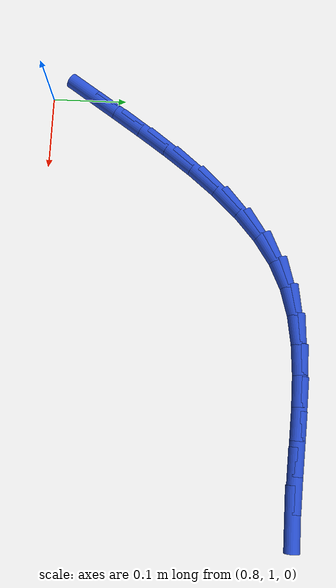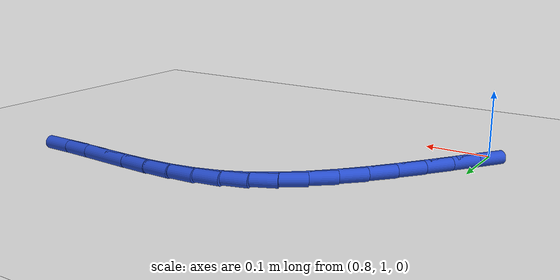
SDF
<sdf version="1.6">
 <world name="default">
  <model name="ground_plane">
   <static>1</static>
   <link name="link">
    <collision name="collision">
     <geometry><plane><normal>0 0 1</normal><size>100 100</size></plane></geometry>
     <surface><friction><ode><mu>100</mu><mu2>50</mu2></ode></friction></surface>
    </collision>
    <visual name="visual">
     <cast_shadows>0</cast_shadows>
     <geometry><plane><normal>0 0 1</normal><size>100 100</size></plane></geometry>
     <material>
      <script><uri>file://media/materials/scripts/gazebo.material</uri><name>Gazebo/WhiteGlow</name></script>
     </material>
    </visual>
   </link>
  </model>
  <model name="line">
   <link name="link_33">
    <pose>0.7979539431534008 1.0568195641522236 0.01 0 1.57 0.9688779254207448</pose>
    <collision name="collision">
     <geometry><cylinder><radius>0.01</radius><length>0.08</length></cylinder></geometry>
    </collision>
    <visual name="visual">
     <material>
      <script><name>Gazebo/Blue</name><uri>file://media/materials/scripts/gazebo.material</uri></script>
     </material>
     <geometry><cylinder><radius>0.01</radius><length>0.08</length></cylinder></geometry>
    </visual>
   </link>
   <link name="link_34">
    <pose>0.8227281380039596 1.092883250439157 0.01 0 1.57 0.9621442076169071</pose>
    <collision name="collision">
     <geometry><cylinder><radius>0.01</radius><length>0.08</length></cylinder></geometry>
    </collision>
    <visual name="visual">
     <material>
      <script><name>Gazebo/Blue</name><uri>file://media/materials/scripts/gazebo.material</uri></script>
     </material>
     <geometry><cylinder><radius>0.01</radius><length>0.08</length></cylinder></geometry>
    </visual>
   </link>
   <link name="link_35">
    <pose>0.8480619826033418 1.1292346918011351 0.01 0 1.57 0.9467366835521361</pose>
    <collision name="collision">
     <geometry><cylinder><radius>0.01</radius><length>0.08</length></cylinder></geometry>
    </collision>
    <visual name="visual">
     <material>
      <script><name>Gazebo/Blue</name><uri>file://media/materials/scripts/gazebo.material</uri></script>
     </material>
     <geometry><cylinder><radius>0.01</radius><length>0.08</length></cylinder></geometry>
    </visual>
   </link>
   <link name="link_36">
    <pose>0.874131385462575 1.165439401969273 0.01 0 1.57 0.9157407051295933</pose>
    <collision name="collision">
     <geometry><cylinder><radius>0.01</radius><length>0.08</length></cylinder></geometry>
    </collision>
    <visual name="visual">
     <material>
      <script><name>Gazebo/Blue</name><uri>file://media/materials/scripts/gazebo.material</uri></script>
     </material>
     <geometry><cylinder><radius>0.01</radius><length>0.08</length></cylinder></geometry>
    </visual>
   </link>
   <link name="link_37">
    <pose>0.9011251554934223 1.2005778145203592 0.01 0 1.57 0.8670609290528966</pose>
    <collision name="collision">
     <geometry><cylinder><radius>0.01</radius><length>0.08</length></cylinder></geometry>
    </collision>
    <visual name="visual">
     <material>
      <script><name>Gazebo/Blue</name><uri>file://media/materials/scripts/gazebo.material</uri></script>
     </material>
     <geometry><cylinder><radius>0.01</radius><length>0.08</length></cylinder></geometry>
    </visual>
   </link>
   <link name="link_38">
    <pose>0.9292329956187065 1.2336967464767978 0.01 0 1.57 0.7977326851353342</pose>
    <collision name="collision">
     <geometry><cylinder><radius>0.01</radius><length>0.08</length></cylinder></geometry>
    </collision>
    <visual name="visual">
     <material>
      <script><name>Gazebo/Blue</name><uri>file://media/materials/scripts/gazebo.material</uri></script>
     </material>
     <geometry><cylinder><radius>0.01</radius><length>0.08</length></cylinder></geometry>
    </visual>
   </link>
   <link name="link_39">
    <pose>0.9586446087612505 1.2638430148609943 0.01 0 1.57 0.7035746880100318</pose>
    <collision name="collision">
     <geometry><cylinder><radius>0.01</radius><length>0.08</length></cylinder></geometry>
    </collision>
    <visual name="visual">
     <material>
      <script><name>Gazebo/Blue</name><uri>file://media/materials/scripts/gazebo.material</uri></script>
     </material>
     <geometry><cylinder><radius>0.01</radius><length>0.08</length></cylinder></geometry>
    </visual>
   </link>
   <link name="link_40">
    <pose>0.9895496978438766 1.290063436695354 0.01 0 1.57 0.5797978837305164</pose>
    <collision name="collision">
     <geometry><cylinder><radius>0.01</radius><length>0.08</length></cylinder></geometry>
    </collision>
    <visual name="visual">
     <material>
      <script><name>Gazebo/Blue</name><uri>file://media/materials/scripts/gazebo.material</uri></script>
     </material>
     <geometry><cylinder><radius>0.01</radius><length>0.08</length></cylinder></geometry>
    </visual>
   </link>
   <link name="link_41">
    <pose>1.0221379657894079 1.3114048290022817 0.01 0 1.57 0.4249567502436075</pose>
    <collision name="collision">
     <geometry><cylinder><radius>0.01</radius><length>0.08</length></cylinder></geometry>
    </collision>
    <visual name="visual">
     <material>
      <script><name>Gazebo/Blue</name><uri>file://media/materials/scripts/gazebo.material</uri></script>
     </material>
     <geometry><cylinder><radius>0.01</radius><length>0.08</length></cylinder></geometry>
    </visual>
   </link>
   <link name="link_42">
    <pose>1.056587581494379 1.3269943495894398 0.01 0 1.57 0.269783693750644</pose>
    <collision name="collision">
     <geometry><cylinder><radius>0.01</radius><length>0.08</length></cylinder></geometry>
    </collision>
    <visual name="visual">
     <material>
      <script><name>Gazebo/Blue</name><uri>file://media/materials/scripts/gazebo.material</uri></script>
     </material>
     <geometry><cylinder><radius>0.01</radius><length>0.08</length></cylinder></geometry>
    </visual>
   </link>
   <link name="link_43">
    <pose>1.0929213217393825 1.3370415471232042 0.01 0 1.57 0.14301045735514736</pose>
    <collision name="collision">
     <geometry><cylinder><radius>0.01</radius><length>0.08</length></cylinder></geometry>
    </collision>
    <visual name="visual">
     <material>
      <script><name>Gazebo/Blue</name><uri>file://media/materials/scripts/gazebo.material</uri></script>
     </material>
     <geometry><cylinder><radius>0.01</radius><length>0.08</length></cylinder></geometry>
    </visual>
   </link>
   <link name="link_44">
    <pose>1.131050566667512 1.342531908620407 0.01 0 1.57 0.048561996883894225</pose>
    <collision name="collision">
     <geometry><cylinder><radius>0.01</radius><length>0.08</length></cylinder></geometry>
    </collision>
    <visual name="visual">
     <material>
      <script><name>Gazebo/Blue</name><uri>file://media/materials/scripts/gazebo.material</uri></script>
     </material>
     <geometry><cylinder><radius>0.01</radius><length>0.08</length></cylinder></geometry>
    </visual>
   </link>
   <link name="link_45">
    <pose>1.170884268232478 1.3444678347615822 0.01 0 1.57 -0.014863838716233342</pose>
    <collision name="collision">
     <geometry><cylinder><radius>0.01</radius><length>0.08</length></cylinder></geometry>
    </collision>
    <visual name="visual">
     <material>
      <script><name>Gazebo/Blue</name><uri>file://media/materials/scripts/gazebo.material</uri></script>
     </material>
     <geometry><cylinder><radius>0.01</radius><length>0.08</length></cylinder></geometry>
    </visual>
   </link>
   <link name="link_46">
    <pose>1.2123313783879925 1.343851726227262 0.01 0 1.57 -0.050359275299689324</pose>
    <collision name="collision">
     <geometry><cylinder><radius>0.01</radius><length>0.08</length></cylinder></geometry>
    </collision>
    <visual name="visual">
     <material>
      <script><name>Gazebo/Blue</name><uri>file://media/materials/scripts/gazebo.material</uri></script>
     </material>
     <geometry><cylinder><radius>0.01</radius><length>0.08</length></cylinder></geometry>
    </visual>
   </link>
   <link name="link_47">
    <pose>1.2553008490877655 1.3416859836979806 0.01 0 1.57 -0.06102611117015203</pose>
    <collision name="collision">
     <geometry><cylinder><radius>0.01</radius><length>0.08</length></cylinder></geometry>
    </collision>
    <visual name="visual">
     <material>
      <script><name>Gazebo/Blue</name><uri>file://media/materials/scripts/gazebo.material</uri></script>
     </material>
     <geometry><cylinder><radius>0.01</radius><length>0.08</length></cylinder></geometry>
    </visual>
   </link>
   <link name="link_48">
    <pose>1.2997016322855093 1.3389730078542705 0.01 0 1.57 -0.049320633686030776</pose>
    <collision name="collision">
     <geometry><cylinder><radius>0.01</radius><length>0.08</length></cylinder></geometry>
    </collision>
    <visual name="visual">
     <material>
      <script><name>Gazebo/Blue</name><uri>file://media/materials/scripts/gazebo.material</uri></script>
     </material>
     <geometry><cylinder><radius>0.01</radius><length>0.08</length></cylinder></geometry>
    </visual>
   </link>
   <link name="link_49">
    <pose>1.3454426799349344 1.3367151993766644 0.01 0 1.57 -0.01702827381585976</pose>
    <collision name="collision">
     <geometry><cylinder><radius>0.01</radius><length>0.08</length></cylinder></geometry>
    </collision>
    <visual name="visual">
     <material>
      <script><name>Gazebo/Blue</name><uri>file://media/materials/scripts/gazebo.material</uri></script>
     </material>
     <geometry><cylinder><radius>0.01</radius><length>0.08</length></cylinder></geometry>
    </visual>
   </link>
  </model>
 </world>
</sdf>
